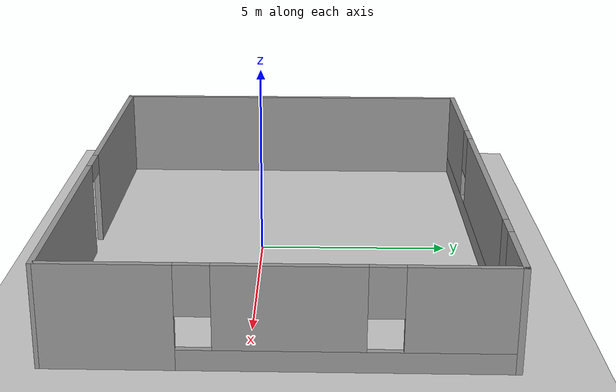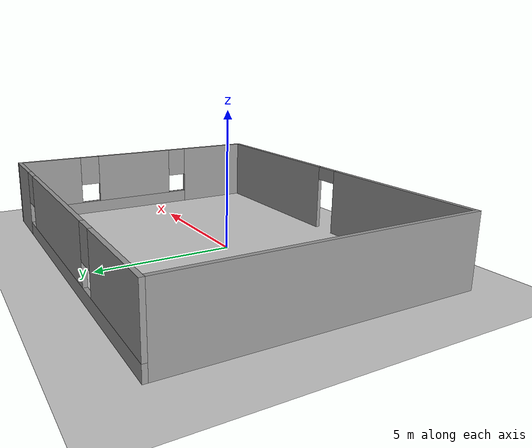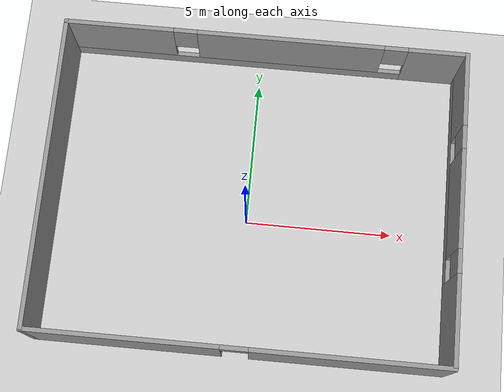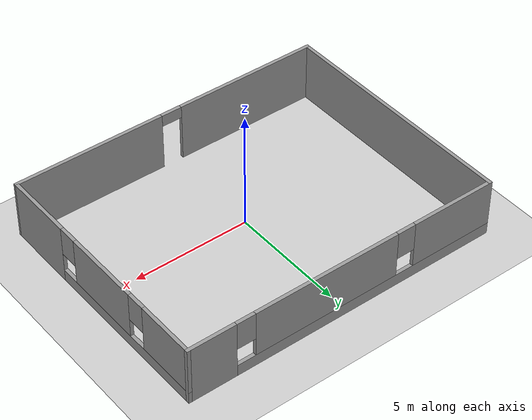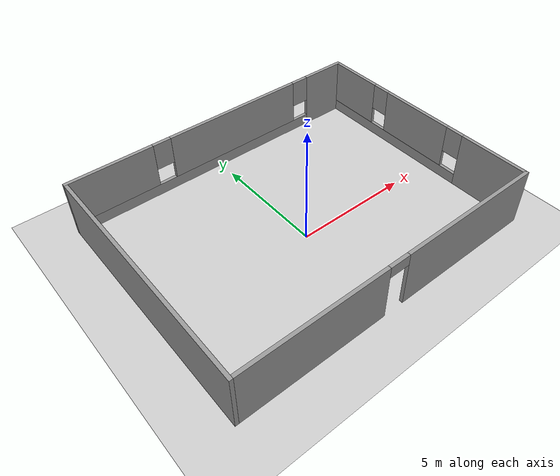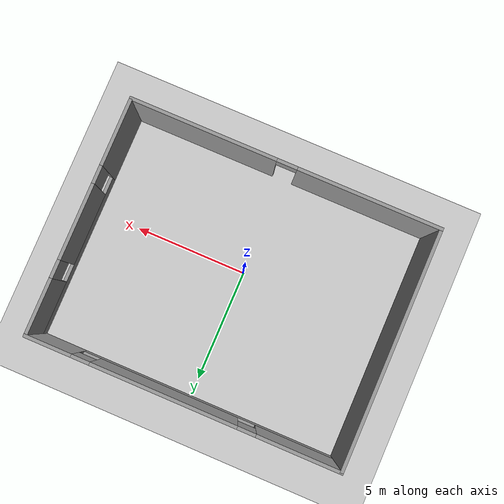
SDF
<sdf version='1.4'>
  <world name='default'>
    <light name='sun' type='directional'>
      <cast_shadows>1</cast_shadows>
      <pose>0 0 10 0 -0 0</pose>
      <diffuse>0.8 0.8 0.8 1</diffuse>
      <specular>0.2 0.2 0.2 1</specular>
      <attenuation>
        <range>1000</range>
        <constant>0.9</constant>
        <linear>0.01</linear>
        <quadratic>0.001</quadratic>
      </attenuation>
      <direction>-0.5 0.1 -0.9</direction>
    </light>
    <model name='ground_plane'>
      <static>1</static>
      <link name='link'>
        <collision name='collision'>
          <geometry>
            <plane>
              <normal>0 0 1</normal>
              <size>100 100</size>
            </plane>
          </geometry>
          <surface>
            <friction>
              <ode>
                <mu>100</mu>
                <mu2>50</mu2>
              </ode>
            </friction>
            <bounce/>
            <contact>
              <ode/>
            </contact>
          </surface>
          <max_contacts>10</max_contacts>
        </collision>
        <visual name='visual'>
          <cast_shadows>0</cast_shadows>
          <geometry>
            <plane>
              <normal>0 0 1</normal>
              <size>100 100</size>
            </plane>
          </geometry>
          <material>
            <script>
              <uri>file://media/materials/scripts/gazebo.material</uri>
              <name>Gazebo/Grey</name>
            </script>
          </material>
        </visual>
        <velocity_decay>
          <linear>0</linear>
          <angular>0</angular>
        </velocity_decay>
        <self_collide>0</self_collide>
        <kinematic>0</kinematic>
        <gravity>1</gravity>
      </link>
    </model>
    <physics type='ode'>
      <max_step_size>0.001</max_step_size>
      <real_time_factor>1</real_time_factor>
      <real_time_update_rate>1000</real_time_update_rate>
      <gravity>0 0 -9.8</gravity>
    </physics>
    <scene>
      <ambient>0.4 0.4 0.4 1</ambient>
      <background>0.7 0.7 0.7 1</background>
      <shadows>1</shadows>
    </scene>
    <spherical_coordinates>
      <surface_model>EARTH_WGS84</surface_model>
      <latitude_deg>0</latitude_deg>
      <longitude_deg>0</longitude_deg>
      <elevation>0</elevation>
      <heading_deg>0</heading_deg>
    </spherical_coordinates>
   <model name='room_'>
    <pose frame=''>0.14 0.655 0 0 -0 0</pose>
    <link name='Wall_0'>
      <pose frame=''>0 -5.225 0 0 -0 3.14159</pose>
      <visual name='Wall_0_Visual_0'>
	<pose frame=''>-3.61983 0 1.25 0 -0 0</pose>
	<geometry>
	  <box>
	    <size>6.51034 0.15 2.5</size>
	  </box>
	</geometry>
	<material>
	  <script>
	    <uri>file://media/materials/scripts/gazebo.material</uri>
	    <name>Gazebo/Grey</name>
	  </script>
	  <ambient>1 1 1 1</ambient>
	</material>
      </visual>
      <collision name='Wall_0_Collision_0'>
	<geometry>
	  <box>
	    <size>6.51034 0.15 2.5</size>
	  </box>
	</geometry>
	<pose frame=''>-3.61983 0 1.25 0 -0 0</pose>
      </collision>
      <visual name='Wall_0_Visual_1'>
	<pose frame=''>3.70517 0 1.25 0 -0 0</pose>
	<geometry>
	  <box>
	    <size>6.33966 0.15 2.5</size>
	  </box>
	</geometry>
	<material>
	  <script>
	    <uri>file://media/materials/scripts/gazebo.material</uri>
	    <name>Gazebo/Grey</name>
	  </script>
	  <ambient>1 1 1 1</ambient>
	</material>
      </visual>
      <collision name='Wall_0_Collision_1'>
	<geometry>
	  <box>
	    <size>6.33966 0.15 2.5</size>
	  </box>
	</geometry>
	<pose frame=''>3.70517 0 1.25 0 -0 0</pose>
      </collision>
      <visual name='Wall_0_Visual_2'>
	<pose frame=''>0.085344 0 2.25 0 -0 0</pose>
	<geometry>
	  <box>
	    <size>0.9 0.15 0.5</size>
	  </box>
	</geometry>
	<material>
	  <script>
	    <uri>file://media/materials/scripts/gazebo.material</uri>
	    <name>Gazebo/Grey</name>
	  </script>
	  <ambient>1 1 1 1</ambient>
	</material>
      </visual>
      <collision name='Wall_0_Collision_2'>
	<geometry>
	  <box>
	    <size>0.9 0.15 0.5</size>
	  </box>
	</geometry>
	<pose frame=''>0.085344 0 2.25 0 -0 0</pose>
      </collision>
    </link>
    <link name='Wall_3'>
      <pose frame=''>6.8 0.05 0 0 -0 1.5708</pose>
      <visual name='Wall_3_Visual_0'>
	<pose frame=''>-3.76113 0 1.25 0 -0 0</pose>
	<geometry>
	  <box>
	    <size>2.97774 0.15 2.5</size>
	  </box>
	</geometry>
	<material>
	  <script>
	    <uri>file://media/materials/scripts/gazebo.material</uri>
	    <name>Gazebo/Grey</name>
	  </script>
	  <ambient>1 1 1 1</ambient>
	</material>
      </visual>
      <collision name='Wall_3_Collision_0'>
	<geometry>
	  <box>
	    <size>2.97774 0.15 2.5</size>
	  </box>
	</geometry>
	<pose frame=''>-3.76113 0 1.25 0 -0 0</pose>
      </collision>
      <visual name='Wall_3_Visual_1'>
	<pose frame=''>1.48887 0 0.25 0 -0 0</pose>
	<geometry>
	  <box>
	    <size>7.52226 0.15 0.5</size>
	  </box>
	</geometry>
	<material>
	  <script>
	    <uri>file://media/materials/scripts/gazebo.material</uri>
	    <name>Gazebo/Grey</name>
	  </script>
	  <ambient>1 1 1 1</ambient>
	</material>
      </visual>
      <collision name='Wall_3_Collision_1'>
	<geometry>
	  <box>
	    <size>7.52226 0.15 0.5</size>
	  </box>
	</geometry>
	<pose frame=''>1.48887 0 0.25 0 -0 0</pose>
      </collision>
      <visual name='Wall_3_Visual_2'>
	<pose frame=''>0.202555 0 1.5 0 -0 0</pose>
	<geometry>
	  <box>
	    <size>3.34963 0.15 2</size>
	  </box>
	</geometry>
	<material>
	  <script>
	    <uri>file://media/materials/scripts/gazebo.material</uri>
	    <name>Gazebo/Grey</name>
	  </script>
	  <ambient>1 1 1 1</ambient>
	</material>
      </visual>
      <collision name='Wall_3_Collision_2'>
	<geometry>
	  <box>
	    <size>3.34963 0.15 2</size>
	  </box>
	</geometry>
	<pose frame=''>0.202555 0 1.5 0 -0 0</pose>
      </collision>
      <visual name='Wall_3_Visual_3'>
	<pose frame=''>3.96368 0 1.5 0 -0 0</pose>
	<geometry>
	  <box>
	    <size>2.57263 0.15 2</size>
	  </box>
	</geometry>
	<material>
	  <script>
	    <uri>file://media/materials/scripts/gazebo.material</uri>
	    <name>Gazebo/Grey</name>
	  </script>
	  <ambient>1 1 1 1</ambient>
	</material>
      </visual>
      <collision name='Wall_3_Collision_3'>
	<geometry>
	  <box>
	    <size>2.57263 0.15 2</size>
	  </box>
	</geometry>
	<pose frame=''>3.96368 0 1.5 0 -0 0</pose>
      </collision>
      <visual name='Wall_3_Visual_4'>
	<pose frame=''>-1.87226 0 1.9 0 -0 0</pose>
	<geometry>
	  <box>
	    <size>0.8 0.15 1.2</size>
	  </box>
	</geometry>
	<material>
	  <script>
	    <uri>file://media/materials/scripts/gazebo.material</uri>
	    <name>Gazebo/Grey</name>
	  </script>
	  <ambient>1 1 1 1</ambient>
	</material>
      </visual>
      <collision name='Wall_3_Collision_4'>
	<geometry>
	  <box>
	    <size>0.8 0.15 1.2</size>
	  </box>
	</geometry>
	<pose frame=''>-1.87226 0 1.9 0 -0 0</pose>
      </collision>
      <visual name='Wall_3_Visual_5'>
	<pose frame=''>2.27737 0 1.9 0 -0 0</pose>
	<geometry>
	  <box>
	    <size>0.8 0.15 1.2</size>
	  </box>
	</geometry>
	<material>
	  <script>
	    <uri>file://media/materials/scripts/gazebo.material</uri>
	    <name>Gazebo/Grey</name>
	  </script>
	  <ambient>1 1 1 1</ambient>
	</material>
      </visual>
      <collision name='Wall_3_Collision_5'>
	<geometry>
	  <box>
	    <size>0.8 0.15 1.2</size>
	  </box>
	</geometry>
	<pose frame=''>2.27737 0 1.9 0 -0 0</pose>
      </collision>
    </link>
    <link name='Wall_6'>
      <pose frame=''>0 5.225 0 0 -0 3.14159</pose>
      <visual name='Wall_6_Visual_0'>
	<pose frame=''>-5.84255 0 1.25 0 -0 0</pose>
	<geometry>
	  <box>
	    <size>2.06491 0.15 2.5</size>
	  </box>
	</geometry>
	<material>
	  <script>
	    <uri>file://media/materials/scripts/gazebo.material</uri>
	    <name>Gazebo/Grey</name>
	  </script>
	  <ambient>1 1 1 1</ambient>
	</material>
      </visual>
      <collision name='Wall_6_Collision_0'>
	<geometry>
	  <box>
	    <size>2.06491 0.15 2.5</size>
	  </box>
	</geometry>
	<pose frame=''>-5.84255 0 1.25 0 -0 0</pose>
      </collision>
      <visual name='Wall_6_Visual_1'>
	<pose frame=''>1.03245 0 0.25 0 -0 0</pose>
	<geometry>
	  <box>
	    <size>11.6851 0.15 0.5</size>
	  </box>
	</geometry>
	<material>
	  <script>
	    <uri>file://media/materials/scripts/gazebo.material</uri>
	    <name>Gazebo/Grey</name>
	  </script>
	  <ambient>1 1 1 1</ambient>
	</material>
      </visual>
      <collision name='Wall_6_Collision_1'>
	<geometry>
	  <box>
	    <size>11.6851 0.15 0.5</size>
	  </box>
	</geometry>
	<pose frame=''>1.03245 0 0.25 0 -0 0</pose>
      </collision>
      <visual name='Wall_6_Visual_2'>
	<pose frame=''>-0.832363 0 1.5 0 -0 0</pose>
	<geometry>
	  <box>
	    <size>6.35545 0.15 2</size>
	  </box>
	</geometry>
	<material>
	  <script>
	    <uri>file://media/materials/scripts/gazebo.material</uri>
	    <name>Gazebo/Grey</name>
	  </script>
	  <ambient>1 1 1 1</ambient>
	</material>
      </visual>
      <collision name='Wall_6_Collision_2'>
	<geometry>
	  <box>
	    <size>6.35545 0.15 2</size>
	  </box>
	</geometry>
	<pose frame=''>-0.832363 0 1.5 0 -0 0</pose>
      </collision>
      <visual name='Wall_6_Visual_3'>
	<pose frame=''>5.01018 0 1.5 0 -0 0</pose>
	<geometry>
	  <box>
	    <size>3.72964 0.15 2</size>
	  </box>
	</geometry>
	<material>
	  <script>
	    <uri>file://media/materials/scripts/gazebo.material</uri>
	    <name>Gazebo/Grey</name>
	  </script>
	  <ambient>1 1 1 1</ambient>
	</material>
      </visual>
      <collision name='Wall_6_Collision_3'>
	<geometry>
	  <box>
	    <size>3.72964 0.15 2</size>
	  </box>
	</geometry>
	<pose frame=''>5.01018 0 1.5 0 -0 0</pose>
      </collision>
      <visual name='Wall_6_Visual_4'>
	<pose frame=''>-4.41009 0 1.9 0 -0 0</pose>
	<geometry>
	  <box>
	    <size>0.8 0.15 1.2</size>
	  </box>
	</geometry>
	<material>
	  <script>
	    <uri>file://media/materials/scripts/gazebo.material</uri>
	    <name>Gazebo/Grey</name>
	  </script>
	  <ambient>1 1 1 1</ambient>
	</material>
      </visual>
      <collision name='Wall_6_Collision_4'>
	<geometry>
	  <box>
	    <size>0.8 0.15 1.2</size>
	  </box>
	</geometry>
	<pose frame=''>-4.41009 0 1.9 0 -0 0</pose>
      </collision>
      <visual name='Wall_6_Visual_5'>
	<pose frame=''>2.74536 0 1.9 0 -0 0</pose>
	<geometry>
	  <box>
	    <size>0.8 0.15 1.2</size>
	  </box>
	</geometry>
	<material>
	  <script>
	    <uri>file://media/materials/scripts/gazebo.material</uri>
	    <name>Gazebo/Grey</name>
	  </script>
	  <ambient>1 1 1 1</ambient>
	</material>
      </visual>
      <collision name='Wall_6_Collision_5'>
	<geometry>
	  <box>
	    <size>0.8 0.15 1.2</size>
	  </box>
	</geometry>
	<pose frame=''>2.74536 0 1.9 0 -0 0</pose>
      </collision>
    </link>
    <link name='Wall_7'>
      <collision name='Wall_7_Collision'>
	<geometry>
	  <box>
	    <size>10.6 0.15 2.5</size>
	  </box>
	</geometry>
	<pose frame=''>0 0 1.25 0 -0 0</pose>
      </collision>
      <visual name='Wall_7_Visual'>
	<pose frame=''>0 0 1.25 0 -0 0</pose>
	<geometry>
	  <box>
	    <size>10.6 0.15 2.5</size>
	  </box>
	</geometry>
	<material>
	  <script>
	    <uri>file://media/materials/scripts/gazebo.material</uri>
	    <name>Gazebo/Grey</name>
	  </script>
	  <ambient>1 1 1 1</ambient>
	</material>
      </visual>
      <pose frame=''>-6.8 0 0 0 0 -1.5708</pose>
    </link>
    <static>1</static>
  </model>
  </world>
</sdf>
